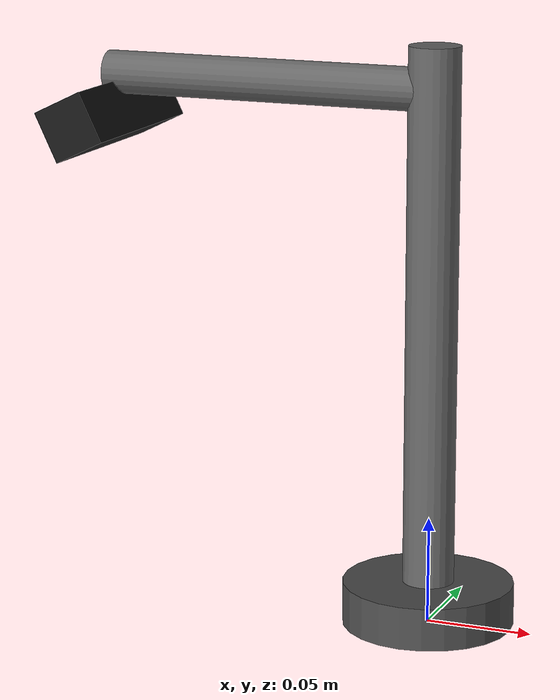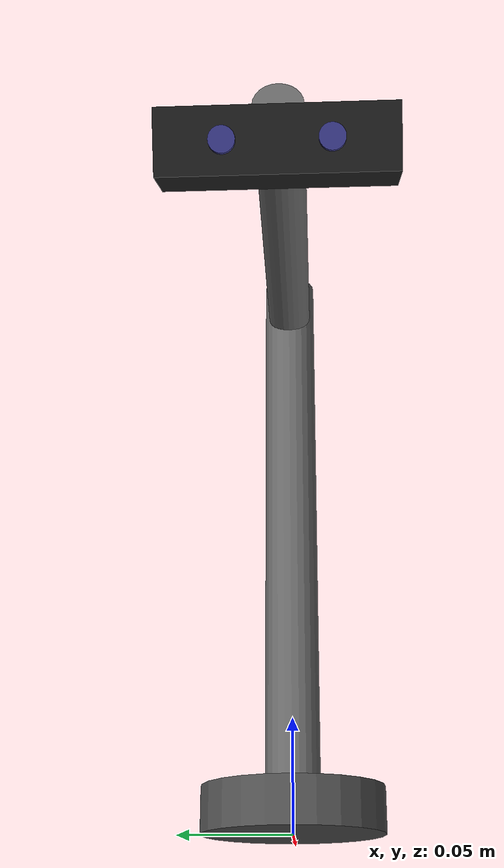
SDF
<?xml version="1.0"?>
<sdf version="1.6">
  <model name="camera">
    <static>true</static>

    <link name="base_link">
      <pose>0 0 0 0 0 0</pose>
      <visual name="base_visual">
        <pose>0 0 0.01 0 0 0</pose>
        <geometry>
          <cylinder>
            <radius>0.04</radius>
            <length>0.02</length>
          </cylinder>
        </geometry>
        <material>
          <ambient>0.2 0.2 0.2 1</ambient>
          <diffuse>0.3 0.3 0.3 1</diffuse>
        </material>
      </visual>
      <collision name="base_collision">
        <pose>0 0 0.01 0 0 0</pose>
        <geometry>
          <cylinder>
            <radius>0.04</radius>
            <length>0.02</length>
          </cylinder>
        </geometry>
      </collision>
    </link>

    <link name="pole_link">
      <pose>0 0 0.14 0 0 0</pose>
      <visual name="pole_visual">
        <geometry>
          <cylinder>
            <radius>0.012</radius>
            <length>0.26</length>
          </cylinder>
        </geometry>
        <material>
          <ambient>0.3 0.3 0.3 1</ambient>
          <diffuse>0.4 0.4 0.4 1</diffuse>
        </material>
      </visual>
    </link>

    <link name="arm_link">
      <pose>-0.08 0 0.25 0 1.5708 0</pose>
      <visual name="arm_visual">
        <geometry>
          <cylinder>
            <radius>0.01</radius>
            <length>0.16</length>
          </cylinder>
        </geometry>
        <material>
          <ambient>0.3 0.3 0.3 1</ambient>
          <diffuse>0.4 0.4 0.4 1</diffuse>
        </material>
      </visual>
    </link>

    <link name="camera_link">
      <pose>-0.16 0 0.23 0 0.45 3.14159</pose>
      <inertial>
        <mass>0.1</mass>
        <inertia>
          <ixx>0.0001</ixx>
          <ixy>0</ixy>
          <ixz>0</ixz>
          <iyy>0.0001</iyy>
          <iyz>0</iyz>
          <izz>0.0001</izz>
        </inertia>
      </inertial>

      <visual name="camera_body">
        <geometry>
          <box>
            <size>0.025 0.09 0.025</size>
          </box>
        </geometry>
        <material>
          <ambient>0.05 0.05 0.05 1</ambient>
          <diffuse>0.1 0.1 0.1 1</diffuse>
        </material>
      </visual>

      <visual name="lens_left">
        <pose>0.013 0.02 0 0 1.5708 0</pose>
        <geometry>
          <cylinder>
            <radius>0.005</radius>
            <length>0.003</length>
          </cylinder>
        </geometry>
        <material>
          <ambient>0.1 0.1 0.3 1</ambient>
          <diffuse>0.2 0.2 0.5 1</diffuse>
        </material>
      </visual>

      <visual name="lens_right">
        <pose>0.013 -0.02 0 0 1.5708 0</pose>
        <geometry>
          <cylinder>
            <radius>0.005</radius>
            <length>0.003</length>
          </cylinder>
        </geometry>
        <material>
          <ambient>0.1 0.1 0.3 1</ambient>
          <diffuse>0.2 0.2 0.5 1</diffuse>
        </material>
      </visual>

      <collision name="camera_collision">
        <geometry>
          <box>
            <size>0.025 0.09 0.025</size>
          </box>
        </geometry>
      </collision>

      <sensor name="color_camera" type="camera">
        <pose>0.0125 0 0 0 0 0</pose>
        <camera>
          <horizontal_fov>1.047</horizontal_fov>
          <image>
            <width>640</width>
            <height>480</height>
            <format>R8G8B8</format>
          </image>
          <clip>
            <near>0.1</near>
            <far>5</far>
          </clip>
        </camera>
        <always_on>1</always_on>
        <update_rate>30</update_rate>
        <visualize>true</visualize>
        <plugin name="camera_controller" filename="libgazebo_ros_camera.so">
          <ros>
            <namespace>/camera</namespace>
            <remapping>image_raw:=color/image_raw</remapping>
            <remapping>camera_info:=color/camera_info</remapping>
          </ros>
          <camera_name>color</camera_name>
          <frame_name>camera_color_optical_frame</frame_name>
        </plugin>
      </sensor>

      <sensor name="depth_camera" type="depth">
        <pose>0.0125 0 0 0 0 0</pose>
        <camera>
          <horizontal_fov>1.047</horizontal_fov>
          <image>
            <width>640</width>
            <height>480</height>
          </image>
          <clip>
            <near>0.1</near>
            <far>5</far>
          </clip>
        </camera>
        <always_on>1</always_on>
        <update_rate>30</update_rate>
        <visualize>false</visualize>
        <plugin name="depth_camera_controller" filename="libgazebo_ros_camera.so">
          <ros>
            <namespace>/camera</namespace>
            <remapping>image_raw:=depth/image_raw</remapping>
            <remapping>camera_info:=depth/camera_info</remapping>
            <remapping>points:=depth/points</remapping>
          </ros>
          <camera_name>depth</camera_name>
          <frame_name>camera_depth_optical_frame</frame_name>
          <min_depth>0.1</min_depth>
          <max_depth>5.0</max_depth>
        </plugin>
      </sensor>
    </link>

    <joint name="base_to_pole" type="fixed">
      <parent>base_link</parent>
      <child>pole_link</child>
    </joint>

    <joint name="pole_to_arm" type="fixed">
      <parent>pole_link</parent>
      <child>arm_link</child>
    </joint>

    <joint name="arm_to_camera" type="fixed">
      <parent>arm_link</parent>
      <child>camera_link</child>
    </joint>

  </model>
</sdf>
